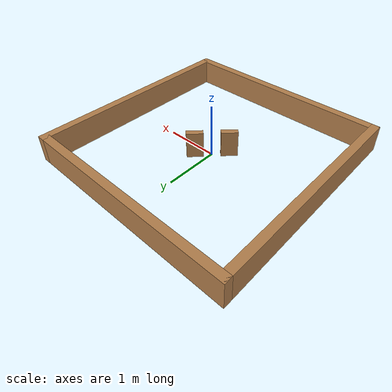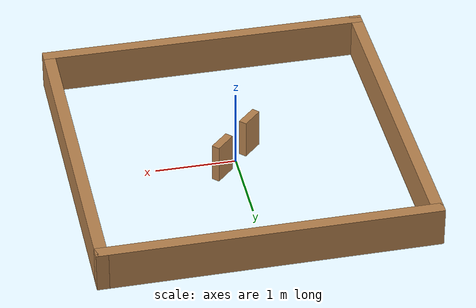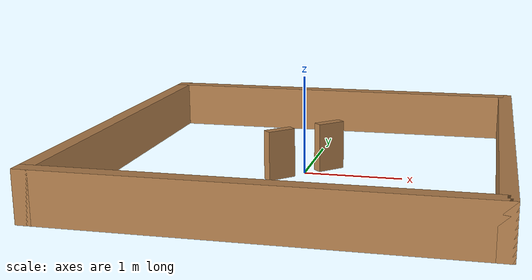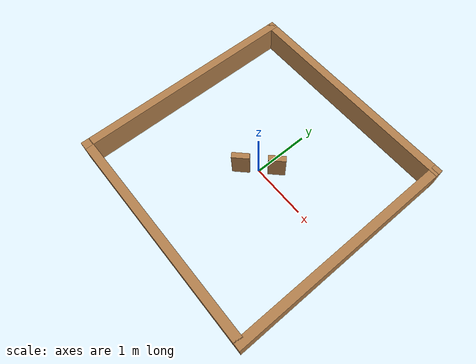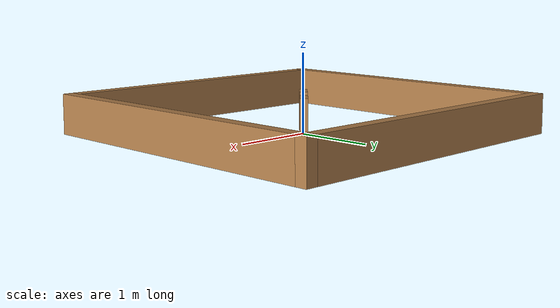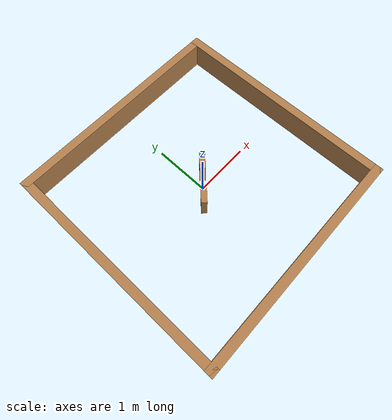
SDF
<?xml version='1.0'?>
<sdf version='1.7'>
  <model name='narrow_xin_small'>
    <pose>0 0 0 0 -0 0</pose>
    <link name='Wall_0'>
      <collision name='Wall_0_Collision'>
        <geometry>
          <box>
            <size>4.15 0.15 0.5</size>
          </box>
        </geometry>
        <pose>0 0 0.25 0 -0 0</pose>
      </collision>
      <visual name='Wall_0_Visual'>
        <pose>0 0 0.25 0 -0 0</pose>
        <geometry>
          <box>
            <size>4.15 0.15 0.5</size>
          </box>
        </geometry>
        <material>
          <script>
            <uri>file://media/materials/scripts/gazebo.material</uri>
            <name>Gazebo/Wood</name>
          </script>
          <ambient>1 1 1 1</ambient>
        </material>
        <meta>
          <layer>0</layer>
        </meta>
      </visual>
      <pose>0 -2 0 0 -0 0</pose>
    </link>
    <link name='Wall_10'>
      <collision name='Wall_10_Collision'>
        <geometry>
          <box>
            <size>0.299404 0.1 0.5</size>
          </box>
        </geometry>
        <pose>0 0 0.25 0 -0 0</pose>
      </collision>
      <visual name='Wall_10_Visual'>
        <pose>0 0 0.25 0 -0 0</pose>
        <geometry>
          <box>
            <size>0.299404 0.1 0.5</size>
          </box>
        </geometry>
        <material>
          <script>
            <uri>file://media/materials/scripts/gazebo.material</uri>
            <name>Gazebo/Wood</name>
          </script>
          <ambient>1 1 1 1</ambient>
        </material>
        <meta>
          <layer>0</layer>
        </meta>
      </visual>
      <pose>-0.2125 -0.2125 0 0 -0 -2.35619</pose>
    </link>
    <link name='Wall_2'>
      <collision name='Wall_2_Collision'>
        <geometry>
          <box>
            <size>4.15 0.15 0.5</size>
          </box>
        </geometry>
        <pose>0 0 0.25 0 -0 0</pose>
      </collision>
      <visual name='Wall_2_Visual'>
        <pose>0 0 0.25 0 -0 0</pose>
        <geometry>
          <box>
            <size>4.15 0.15 0.5</size>
          </box>
        </geometry>
        <material>
          <script>
            <uri>file://media/materials/scripts/gazebo.material</uri>
            <name>Gazebo/Wood</name>
          </script>
          <ambient>1 1 1 1</ambient>
        </material>
        <meta>
          <layer>0</layer>
        </meta>
      </visual>
      <pose>2 0 0 0 -0 1.5708</pose>
    </link>
    <link name='Wall_4'>
      <collision name='Wall_4_Collision'>
        <geometry>
          <box>
            <size>4.15 0.15 0.5</size>
          </box>
        </geometry>
        <pose>0 0 0.25 0 -0 0</pose>
      </collision>
      <visual name='Wall_4_Visual'>
        <pose>0 0 0.25 0 -0 0</pose>
        <geometry>
          <box>
            <size>4.15 0.15 0.5</size>
          </box>
        </geometry>
        <material>
          <script>
            <uri>file://media/materials/scripts/gazebo.material</uri>
            <name>Gazebo/Wood</name>
          </script>
          <ambient>1 1 1 1</ambient>
        </material>
        <meta>
          <layer>0</layer>
        </meta>
      </visual>
      <pose>0 2 0 0 -0 3.14159</pose>
    </link>
    <link name='Wall_6'>
      <collision name='Wall_6_Collision'>
        <geometry>
          <box>
            <size>4.15 0.15 0.5</size>
          </box>
        </geometry>
        <pose>0 0 0.25 0 -0 0</pose>
      </collision>
      <visual name='Wall_6_Visual'>
        <pose>0 0 0.25 0 -0 0</pose>
        <geometry>
          <box>
            <size>4.15 0.15 0.5</size>
          </box>
        </geometry>
        <material>
          <script>
            <uri>file://media/materials/scripts/gazebo.material</uri>
            <name>Gazebo/Wood</name>
          </script>
          <ambient>1 1 1 1</ambient>
        </material>
        <meta>
          <layer>0</layer>
        </meta>
      </visual>
      <pose>-2 0 0 0 -0 -1.5708</pose>
    </link>
    <link name='Wall_8'>
      <collision name='Wall_8_Collision'>
        <geometry>
          <box>
            <size>0.299404 0.1 0.5</size>
          </box>
        </geometry>
        <pose>0 0 0.25 0 -0 0</pose>
      </collision>
      <visual name='Wall_8_Visual'>
        <pose>0 0 0.25 0 -0 0</pose>
        <geometry>
          <box>
            <size>0.299404 0.1 0.5</size>
          </box>
        </geometry>
        <material>
          <script>
            <uri>file://media/materials/scripts/gazebo.material</uri>
            <name>Gazebo/Wood</name>
          </script>
          <ambient>1 1 1 1</ambient>
        </material>
        <meta>
          <layer>0</layer>
        </meta>
      </visual>
      <pose>0.2125 0.2125 0 0 -0 0.785398</pose>
    </link>
    <static>1</static>
  </model>
</sdf>
